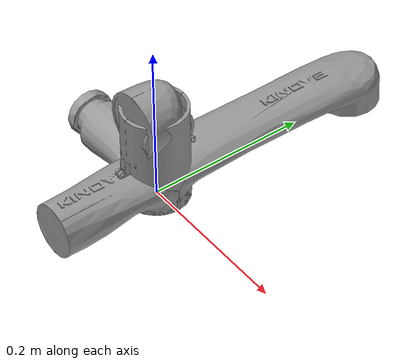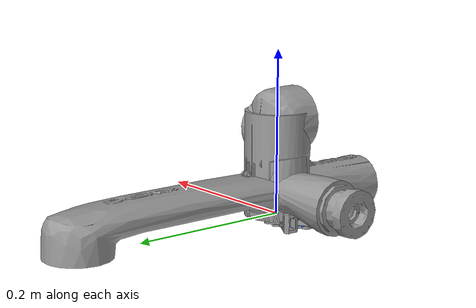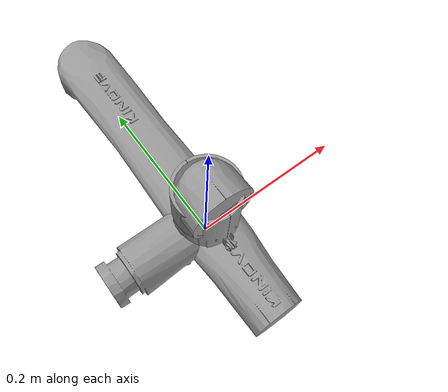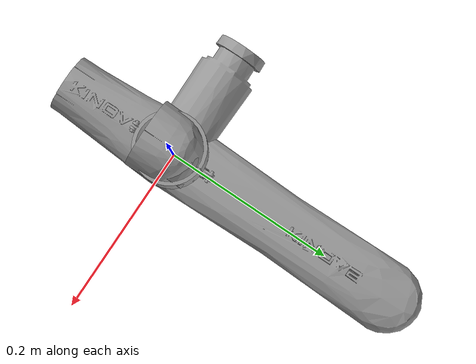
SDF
<sdf version="1.6">
  <model name="gen3_lite_gen3_lite_2f">
    <link name="base_link">
      <inertial>
        <pose>0.002443 0.000156 0.086167 0 -0 0</pose>
        <mass>1.14608</mass>
        <inertia>
          <ixx>0.00335854</ixx>
          <ixy>3.9e-07</ixy>
          <ixz>0.00010989</ixz>
          <iyy>0.003311</iyy>
          <iyz>1.91e-06</iyz>
          <izz>0.00077158</izz>
        </inertia>
      </inertial>
      <collision name="base_link_collision">
        <pose>0 0 0 0 -0 0</pose>
        <geometry>
          <mesh>
            <scale>1 1 1</scale>
            <uri>model://kortex_description/arms/gen3_lite/6dof/meshes/base_link.STL</uri>
          </mesh>
        </geometry>
        <surface>
          <contact>
            <ode/>
          </contact>
          <friction>
            <ode/>
          </friction>
        </surface>
      </collision>
      <visual name="base_link_visual">
        <pose>0 0 0 0 -0 0</pose>
        <geometry>
          <mesh>
            <scale>1 1 1</scale>
            <uri>model://kortex_description/arms/gen3_lite/6dof/meshes/base_link.STL</uri>
          </mesh>
        </geometry>
        <material>
          <script>
            <name>Kortex/Gray</name>
            <uri>file://media/materials/scripts/gazebo.material</uri>
          </script>
        </material>
      </visual>
    </link>
    <joint name="joint_1" type="revolute">
      <pose>0 0 0.12825 0 -0 0</pose>
      <parent>base_link</parent>
      <child>shoulder_link</child>
      <axis>
        <xyz>0 0 1</xyz>
        <limit>
          <lower>-2.69</lower>
          <upper>2.69</upper>
          <effort>10</effort>
          <velocity>1.6</velocity>
        </limit>
        <dynamics>
          <spring_reference>0</spring_reference>
          <spring_stiffness>0</spring_stiffness>
        </dynamics>
        <use_parent_model_frame>0</use_parent_model_frame>
      </axis>
    </joint>
    <link name="shoulder_link">
      <pose>0 0 0 0 -0 0</pose>
      <inertial>
        <pose>2.5e-05 0.022135 0.099377 0 -0 0</pose>
        <mass>0.959744</mass>
        <inertia>
          <ixx>0.00165947</ixx>
          <ixy>2e-08</ixy>
          <ixz>3.6e-07</ixz>
          <iyy>0.00140355</iyy>
          <iyz>0.00034927</iyz>
          <izz>0.00089493</izz>
        </inertia>
      </inertial>
      <collision name="shoulder_link_collision">
        <pose>0 0 0 0 -0 0</pose>
        <geometry>
          <mesh>
            <scale>1 1 1</scale>
            <uri>model://kortex_description/arms/gen3_lite/6dof/meshes/shoulder_link.STL</uri>
          </mesh>
        </geometry>
        <surface>
          <contact>
            <ode/>
          </contact>
          <friction>
            <ode/>
          </friction>
        </surface>
      </collision>
      <visual name="shoulder_link_visual">
        <pose>0 0 0 0 -0 0</pose>
        <geometry>
          <mesh>
            <scale>1 1 1</scale>
            <uri>model://kortex_description/arms/gen3_lite/6dof/meshes/shoulder_link.STL</uri>
          </mesh>
        </geometry>
        <material>
          <script>
            <name>Kortex/Gray</name>
            <uri>file://media/materials/scripts/gazebo.material</uri>
          </script>
        </material>
      </visual>
    </link>
    <joint name="joint_2" type="revolute">
      <pose>0 -0.03 0.115 1.5708 -0 0</pose>
      <parent>shoulder_link</parent>
      <child>arm_link</child>
      <axis>
        <xyz>0 0 1</xyz>
        <limit>
          <lower>-2.69</lower>
          <upper>2.69</upper>
          <effort>14</effort>
          <velocity>1.6</velocity>
        </limit>
        <dynamics>
          <spring_reference>0</spring_reference>
          <spring_stiffness>0</spring_stiffness>
        </dynamics>
        <use_parent_model_frame>0</use_parent_model_frame>
      </axis>
    </joint>
    <link name="arm_link">
      <pose>0 0 0 0 -0 0</pose>
      <inertial>
        <pose>0.029983 0.211548 0.045303 0 -0 0</pose>
        <mass>1.17756</mass>
        <inertia>
          <ixx>0.0114928</ixx>
          <ixy>1e-06</ixy>
          <ixz>1.6e-07</ixz>
          <iyy>0.00102851</iyy>
          <iyz>0.00140765</iyz>
          <izz>0.0113349</izz>
        </inertia>
      </inertial>
      <collision name="arm_link_collision">
        <pose>0 0 0 0 -0 0</pose>
        <geometry>
          <mesh>
            <scale>1 1 1</scale>
            <uri>model://kortex_description/arms/gen3_lite/6dof/meshes/arm_link.STL</uri>
          </mesh>
        </geometry>
        <surface>
          <contact>
            <ode/>
          </contact>
          <friction>
            <ode/>
          </friction>
        </surface>
      </collision>
      <visual name="arm_link_visual">
        <pose>0 0 0 0 -0 0</pose>
        <geometry>
          <mesh>
            <scale>1 1 1</scale>
            <uri>model://kortex_description/arms/gen3_lite/6dof/meshes/arm_link.STL</uri>
          </mesh>
        </geometry>
        <material>
          <script>
            <name>Kortex/Gray</name>
            <uri>file://media/materials/scripts/gazebo.material</uri>
          </script>
        </material>
      </visual>
    </link>
    <joint name="joint_3" type="revolute">
      <pose>0 0.28 0 3.14159 -0 0</pose>
      <parent>arm_link</parent>
      <child>forearm_link</child>
      <axis>
        <xyz>0 0 1</xyz>
        <limit>
          <lower>-2.69</lower>
          <upper>2.69</upper>
          <effort>10</effort>
          <velocity>1.6</velocity>
        </limit>
        <dynamics>
          <spring_reference>0</spring_reference>
          <spring_stiffness>0</spring_stiffness>
        </dynamics>
        <use_parent_model_frame>0</use_parent_model_frame>
      </axis>
    </joint>
    <link name="forearm_link">
      <pose>0 0 0 0 -0 0</pose>
      <inertial>
        <pose>0.030156 0.095022 0.007356 0 -0 0</pose>
        <mass>0.597677</mass>
        <inertia>
          <ixx>0.00163256</ixx>
          <ixy>7.11e-06</ixy>
          <ixz>1.54e-06</ixz>
          <iyy>0.00029798</iyy>
          <iyz>9.587e-05</iyz>
          <izz>0.00169091</izz>
        </inertia>
      </inertial>
      <collision name="forearm_link_collision">
        <pose>0 0 0 0 -0 0</pose>
        <geometry>
          <mesh>
            <scale>1 1 1</scale>
            <uri>model://kortex_description/arms/gen3_lite/6dof/meshes/forearm_link.STL</uri>
          </mesh>
        </geometry>
        <surface>
          <contact>
            <ode/>
          </contact>
          <friction>
            <ode/>
          </friction>
        </surface>
      </collision>
      <visual name="forearm_link_visual">
        <pose>0 0 0 0 -0 0</pose>
        <geometry>
          <mesh>
            <scale>1 1 1</scale>
            <uri>model://kortex_description/arms/gen3_lite/6dof/meshes/forearm_link.STL</uri>
          </mesh>
        </geometry>
        <material>
          <script>
            <name>Kortex/Gray</name>
            <uri>file://media/materials/scripts/gazebo.material</uri>
          </script>
        </material>
      </visual>
    </link>
    <joint name="joint_4" type="revolute">
      <pose>0 -0.14 0.02 1.5708 -0 0</pose>
      <parent>forearm_link</parent>
      <child>lower_wrist_link</child>
      <axis>
        <xyz>0 0 1</xyz>
        <limit>
          <lower>-2.59</lower>
          <upper>2.59</upper>
          <effort>7</effort>
          <velocity>1.6</velocity>
        </limit>
        <dynamics>
          <spring_reference>0</spring_reference>
          <spring_stiffness>0</spring_stiffness>
        </dynamics>
        <use_parent_model_frame>0</use_parent_model_frame>
      </axis>
    </joint>
    <link name="lower_wrist_link">
      <pose>0 0 0 0 -0 0</pose>
      <inertial>
        <pose>0.005751 0.010004 0.087192 0 -0 0</pose>
        <mass>0.526934</mass>
        <inertia>
          <ixx>0.00069098</ixx>
          <ixy>2.4e-07</ixy>
          <ixz>0.00016483</ixz>
          <iyy>0.00078519</iyy>
          <iyz>7.4e-07</iyz>
          <izz>0.00034115</izz>
        </inertia>
      </inertial>
      <collision name="lower_wrist_link_collision">
        <pose>0 0 0 0 -0 0</pose>
        <geometry>
          <mesh>
            <scale>1 1 1</scale>
            <uri>model://kortex_description/arms/gen3_lite/6dof/meshes/lower_wrist_link.STL</uri>
          </mesh>
        </geometry>
        <surface>
          <contact>
            <ode/>
          </contact>
          <friction>
            <ode/>
          </friction>
        </surface>
      </collision>
      <visual name="lower_wrist_link_visual">
        <pose>0 0 0 0 -0 0</pose>
        <geometry>
          <mesh>
            <scale>1 1 1</scale>
            <uri>model://kortex_description/arms/gen3_lite/6dof/meshes/lower_wrist_link.STL</uri>
          </mesh>
        </geometry>
        <material>
          <script>
            <name>Kortex/Gray</name>
            <uri>file://media/materials/scripts/gazebo.material</uri>
          </script>
        </material>
      </visual>
    </link>
    <joint name="joint_5" type="revolute">
      <pose>0.0285 0 0.105 3.14159 1.57079 3.14159</pose>
      <parent>lower_wrist_link</parent>
      <child>upper_wrist_link</child>
      <axis>
        <xyz>0 0 1</xyz>
        <limit>
          <lower>-2.57</lower>
          <upper>2.57</upper>
          <effort>7</effort>
          <velocity>1.6</velocity>
        </limit>
        <dynamics>
          <spring_reference>0</spring_reference>
          <spring_stiffness>0</spring_stiffness>
        </dynamics>
        <use_parent_model_frame>0</use_parent_model_frame>
      </axis>
    </joint>
    <link name="upper_wrist_link">
      <pose>0 0 0 0 -0 0</pose>
      <inertial>
        <pose>0.080565 0.009804 0.018728 0 -0 0</pose>
        <mass>0.580973</mass>
        <inertia>
          <ixx>0.00021268</ixx>
          <ixy>5.21e-06</ixy>
          <ixz>2.91e-06</ixz>
          <iyy>0.00106371</iyy>
          <iyz>1.1e-07</iyz>
          <izz>0.00108465</izz>
        </inertia>
      </inertial>
      <collision name="upper_wrist_link_collision">
        <pose>0 0 0 0 -0 0</pose>
        <geometry>
          <mesh>
            <scale>1 1 1</scale>
            <uri>model://kortex_description/arms/gen3_lite/6dof/meshes/upper_wrist_link.STL</uri>
          </mesh>
        </geometry>
        <surface>
          <contact>
            <ode/>
          </contact>
          <friction>
            <ode/>
          </friction>
        </surface>
      </collision>
      <visual name="upper_wrist_link_visual">
        <pose>0 0 0 0 -0 0</pose>
        <geometry>
          <mesh>
            <scale>1 1 1</scale>
            <uri>model://kortex_description/arms/gen3_lite/6dof/meshes/upper_wrist_link.STL</uri>
          </mesh>
        </geometry>
        <material>
          <script>
            <name>Kortex/Gray</name>
            <uri>file://media/materials/scripts/gazebo.material</uri>
          </script>
        </material>
      </visual>
    </link>
    <joint name="joint_6" type="revolute">
      <pose>-0.105 0 0.0285 3.14159 -1.57079 3.14159</pose>
      <parent>upper_wrist_link</parent>
      <child>end_effector_link</child>
      <axis>
        <xyz>0 0 1</xyz>
        <limit>
          <lower>-2.59</lower>
          <upper>2.59</upper>
          <effort>7</effort>
          <velocity>3.2</velocity>
        </limit>
        <dynamics>
          <spring_reference>0</spring_reference>
          <spring_stiffness>0</spring_stiffness>
        </dynamics>
        <use_parent_model_frame>0</use_parent_model_frame>
      </axis>
    </joint>
    <link name="end_effector_link">
      <pose>0 0 0 0 -0 0</pose>
      <inertial>
        <pose>4e-06 1.1e-05 0.041397 0 -0 0</pose>
        <mass>0.1395</mass>
        <inertia>
          <ixx>0.00011614</ixx>
          <ixy>1e-08</ixy>
          <ixz>4e-08</ixz>
          <iyy>0.00010327</iyy>
          <iyz>0</iyz>
          <izz>9.707e-05</izz>
        </inertia>
      </inertial>
      <collision name="end_effector_link_fixed_joint_lump__gripper_base_link_collision">
        <pose>0 0 0 0 -0 0</pose>
        <geometry>
          <mesh>
            <scale>1 1 1</scale>
            <uri>model://kortex_description/grippers/gen3_lite_2f/meshes/gripper_base_link.STL</uri>
          </mesh>
        </geometry>
        <surface>
          <contact>
            <ode/>
          </contact>
          <friction>
            <ode/>
          </friction>
        </surface>
      </collision>
      <visual name="end_effector_link_fixed_joint_lump__gripper_base_link_visual">
        <pose>0 0 0 0 -0 0</pose>
        <geometry>
          <mesh>
            <scale>1 1 1</scale>
            <uri>model://kortex_description/grippers/gen3_lite_2f/meshes/gripper_base_link.STL</uri>
          </mesh>
        </geometry>
        <material>
          <script>
            <name>Kortex/Gray</name>
            <uri>file://media/materials/scripts/gazebo.material</uri>
          </script>
        </material>
      </visual>
    </link>
    <joint name="left_finger_bottom_joint" type="revolute">
      <pose>0 0.0305 0.070003 3.14159 1.57079 3.14159</pose>
      <parent>end_effector_link</parent>
      <child>left_finger_prox_link</child>
      <axis>
        <xyz>0 0 1</xyz>
        <limit>
          <lower>-0.96</lower>
          <upper>0.09</upper>
          <effort>1000</effort>
          <velocity>1000</velocity>
        </limit>
        <dynamics>
          <spring_reference>0</spring_reference>
          <spring_stiffness>0</spring_stiffness>
        </dynamics>
        <use_parent_model_frame>0</use_parent_model_frame>
      </axis>
    </joint>
    <link name="left_finger_prox_link">
      <pose>0 0 0 0 -0 0</pose>
      <inertial>
        <pose>0.020257 0.006348 7e-05 0 -0 0</pose>
        <mass>0.018385</mass>
        <inertia>
          <ixx>2.29e-06</ixx>
          <ixy>1.43e-06</ixy>
          <ixz>0</ixz>
          <iyy>4.56e-06</iyy>
          <iyz>0</iyz>
          <izz>4.77e-06</izz>
        </inertia>
      </inertial>
      <collision name="left_finger_prox_link_collision">
        <pose>0 0 0 0 -0 0</pose>
        <geometry>
          <mesh>
            <scale>1 1 1</scale>
            <uri>model://kortex_description/grippers/gen3_lite_2f/meshes/left_finger_prox_link.STL</uri>
          </mesh>
        </geometry>
        <surface>
          <contact>
            <ode/>
          </contact>
          <friction>
            <ode/>
          </friction>
        </surface>
      </collision>
      <visual name="left_finger_prox_link_visual">
        <pose>0 0 0 0 -0 0</pose>
        <geometry>
          <mesh>
            <scale>1 1 1</scale>
            <uri>model://kortex_description/grippers/gen3_lite_2f/meshes/left_finger_prox_link.STL</uri>
          </mesh>
        </geometry>
        <material>
          <script>
            <name>Kortex/Gray</name>
            <uri>file://media/materials/scripts/gazebo.material</uri>
          </script>
        </material>
      </visual>
    </link>
    <joint name="left_finger_tip_joint" type="revolute">
      <pose>-0.045636 -0.020423 7e-05 0 -0 0</pose>
      <parent>left_finger_prox_link</parent>
      <child>left_finger_dist_link</child>
      <axis>
        <xyz>0 0 -1</xyz>
        <limit>
          <lower>-0.5</lower>
          <upper>0.21</upper>
          <effort>1000</effort>
          <velocity>1000</velocity>
        </limit>
        <dynamics>
          <spring_reference>0</spring_reference>
          <spring_stiffness>0</spring_stiffness>
        </dynamics>
        <use_parent_model_frame>0</use_parent_model_frame>
      </axis>
    </joint>
    <link name="left_finger_dist_link">
      <pose>0 0 0 0 -0 0</pose>
      <inertial>
        <pose>-0.018488 0.001109 0 0 -0 0</pose>
        <mass>0.010748</mass>
        <inertia>
          <ixx>6.3e-07</ixx>
          <ixy>3.2e-07</ixy>
          <ixz>0</ixz>
          <iyy>1.83e-06</iyy>
          <iyz>0</iyz>
          <izz>1.61e-06</izz>
        </inertia>
      </inertial>
      <collision name="left_finger_dist_link_collision">
        <pose>0 0 0 0 -0 0</pose>
        <geometry>
          <mesh>
            <scale>1 1 1</scale>
            <uri>model://kortex_description/grippers/gen3_lite_2f/meshes/left_finger_dist_link.STL</uri>
          </mesh>
        </geometry>
        <surface>
          <contact>
            <ode/>
          </contact>
          <friction>
            <ode/>
          </friction>
        </surface>
      </collision>
      <visual name="left_finger_dist_link_visual">
        <pose>0 0 0 0 -0 0</pose>
        <geometry>
          <mesh>
            <scale>1 1 1</scale>
            <uri>model://kortex_description/grippers/gen3_lite_2f/meshes/left_finger_dist_link.STL</uri>
          </mesh>
        </geometry>
        <material>
          <script>
            <name>Kortex/Blue</name>
            <uri>file://media/materials/scripts/gazebo.material</uri>
          </script>
        </material>
      </visual>
    </link>
    <joint name="right_finger_bottom_joint" type="revolute">
      <pose>0 -0.030501 0.070003 3.14159 1.57079 3.14159</pose>
      <parent>end_effector_link</parent>
      <child>right_finger_prox_link</child>
      <axis>
        <xyz>0 0 1</xyz>
        <limit>
          <lower>-0.09</lower>
          <upper>0.96</upper>
          <effort>1000</effort>
          <velocity>0.6</velocity>
        </limit>
        <dynamics>
          <spring_reference>0</spring_reference>
          <spring_stiffness>0</spring_stiffness>
        </dynamics>
        <use_parent_model_frame>0</use_parent_model_frame>
      </axis>
    </joint>
    <link name="right_finger_prox_link">
      <pose>0 0 0 0 -0 0</pose>
      <inertial>
        <pose>0.020257 0.006348 7e-05 0 -0 0</pose>
        <mass>0.018385</mass>
        <inertia>
          <ixx>2.29e-06</ixx>
          <ixy>1.43e-06</ixy>
          <ixz>0</ixz>
          <iyy>4.56e-06</iyy>
          <iyz>0</iyz>
          <izz>4.77e-06</izz>
        </inertia>
      </inertial>
      <collision name="right_finger_prox_link_collision">
        <pose>0 0 0 0 -0 0</pose>
        <geometry>
          <mesh>
            <scale>1 1 1</scale>
            <uri>model://kortex_description/grippers/gen3_lite_2f/meshes/right_finger_prox_link.STL</uri>
          </mesh>
        </geometry>
        <surface>
          <contact>
            <ode/>
          </contact>
          <friction>
            <ode/>
          </friction>
        </surface>
      </collision>
      <visual name="right_finger_prox_link_visual">
        <pose>0 0 0 0 -0 0</pose>
        <geometry>
          <mesh>
            <scale>1 1 1</scale>
            <uri>model://kortex_description/grippers/gen3_lite_2f/meshes/right_finger_prox_link.STL</uri>
          </mesh>
        </geometry>
        <material>
          <script>
            <name>Kortex/Gray</name>
            <uri>file://media/materials/scripts/gazebo.material</uri>
          </script>
        </material>
      </visual>
    </link>
    <joint name="right_finger_tip_joint" type="revolute">
      <pose>-0.045636 0.020423 0 0 -0 0</pose>
      <parent>right_finger_prox_link</parent>
      <child>right_finger_dist_link</child>
      <axis>
        <xyz>0 0 1</xyz>
        <limit>
          <lower>-0.5</lower>
          <upper>0.21</upper>
          <effort>1000</effort>
          <velocity>1000</velocity>
        </limit>
        <dynamics>
          <spring_reference>0</spring_reference>
          <spring_stiffness>0</spring_stiffness>
        </dynamics>
        <use_parent_model_frame>0</use_parent_model_frame>
      </axis>
    </joint>
    <link name="right_finger_dist_link">
      <pose>0 0 0 0 -0 0</pose>
      <inertial>
        <pose>0.018488 0.001109 0 0 -0 0</pose>
        <mass>0.010748</mass>
        <inertia>
          <ixx>6.3e-07</ixx>
          <ixy>3.2e-07</ixy>
          <ixz>0</ixz>
          <iyy>1.83e-06</iyy>
          <iyz>0</iyz>
          <izz>1.61e-06</izz>
        </inertia>
      </inertial>
      <collision name="right_finger_dist_link_collision">
        <pose>0 0 0 0 -0 0</pose>
        <geometry>
          <mesh>
            <scale>1 1 1</scale>
            <uri>model://kortex_description/grippers/gen3_lite_2f/meshes/right_finger_dist_link.STL</uri>
          </mesh>
        </geometry>
        <surface>
          <contact>
            <ode/>
          </contact>
          <friction>
            <ode/>
          </friction>
        </surface>
      </collision>
      <visual name="right_finger_dist_link_visual">
        <pose>0 0 0 0 -0 0</pose>
        <geometry>
          <mesh>
            <scale>1 1 1</scale>
            <uri>model://kortex_description/grippers/gen3_lite_2f/meshes/right_finger_dist_link.STL</uri>
          </mesh>
        </geometry>
        <material>
          <script>
            <name>Kortex/Blue</name>
            <uri>file://media/materials/scripts/gazebo.material</uri>
          </script>
        </material>
      </visual>
    </link>
  </model>
</sdf>
